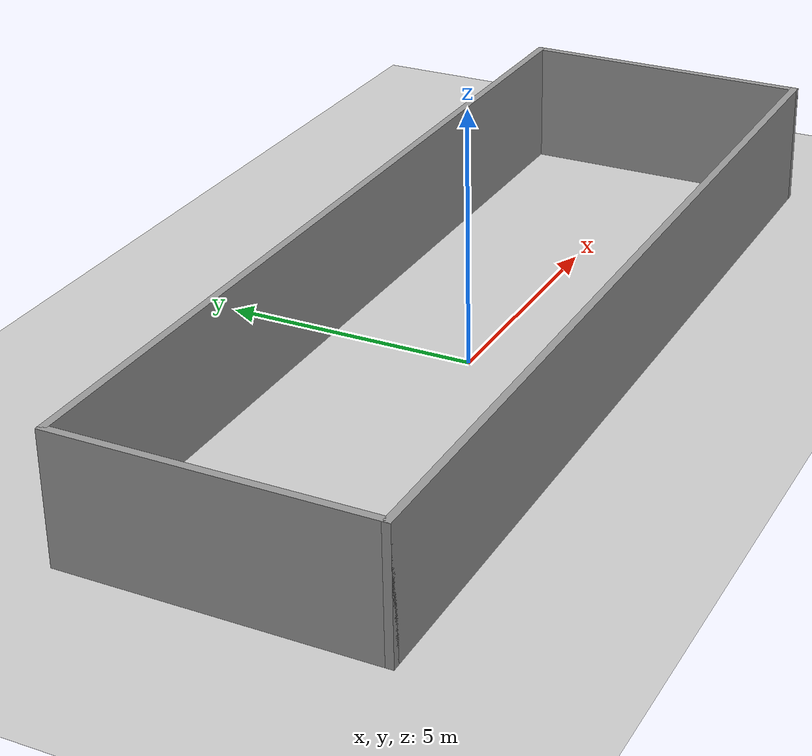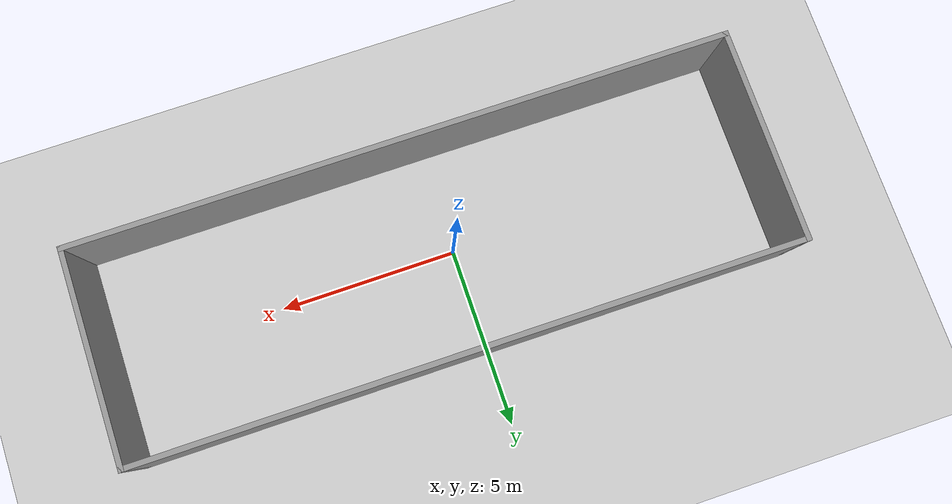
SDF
<sdf version="1.7">
 <world name="default">
  <plugin name="gazebo_ros_state" filename="libgazebo_ros_state.so">
   <ros><namespace>/test</namespace><argument>model_states:=model_states_demo</argument></ros>
   <update_rate>1.0</update_rate>
  </plugin>
  <light name="sun" type="directional">
   <pose>0 0 10 0 -0 0</pose>
   <diffuse>0.8 0.8 0.8 1</diffuse>
   <specular>0.2 0.2 0.2 1</specular>
   <attenuation>
    <range>1000</range>
    <constant>0.9</constant>
    <linear>0.01</linear>
    <quadratic>0.001</quadratic>
   </attenuation>
   <direction>-0.5 0.1 -0.9</direction>
   <spot><inner_angle>0</inner_angle><outer_angle>0</outer_angle><falloff>0</falloff></spot>
  </light>
  <model name="ground_plane">
   <static>1</static>
   <link name="link">
    <collision name="collision">
     <geometry><plane><normal>0 0 1</normal><size>100 100</size></plane></geometry>
     <surface>
      <contact><collide_bitmask>65535</collide_bitmask></contact>
      <friction><ode><mu>100</mu><mu2>50</mu2></ode></friction>
     </surface>
    </collision>
    <visual name="visual">
     <cast_shadows>0</cast_shadows>
     <geometry><plane><normal>0 0 1</normal><size>100 100</size></plane></geometry>
     <material>
      <script><uri>file://media/materials/scripts/gazebo.material</uri><name>Gazebo/Grey</name></script>
     </material>
    </visual>
   </link>
  </model>
  <gravity>0 0 -9.8</gravity>
  <magnetic_field>6e-06 2.3e-05 -4.2e-05</magnetic_field>
  <atmosphere type="adiabatic"/>
  <physics type="ode">
   <max_step_size>0.001</max_step_size>
   <real_time_factor>1</real_time_factor>
   <real_time_update_rate>1000</real_time_update_rate>
  </physics>
  <scene><ambient>0.4 0.4 0.4 1</ambient><background>0.7 0.7 0.7 1</background><shadows>0</shadows></scene>
  <spherical_coordinates>
   <surface_model>EARTH_WGS84</surface_model>
   <latitude_deg>0</latitude_deg>
   <longitude_deg>0</longitude_deg>
   <elevation>0</elevation>
   <heading_deg>0</heading_deg>
  </spherical_coordinates>
  <model name="corridor">
   <pose>0.545 -0.023524 0 0 -0 0</pose>
   <link name="Wall_2">
    <collision name="Wall_2_Collision">
     <geometry><box><size>18.5 0.15 2.5</size></box></geometry>
     <pose>0 0 1.25 0 -0 0</pose>
    </collision>
    <visual name="Wall_2_Visual">
     <pose>0 0 1.25 0 -0 0</pose>
     <geometry><box><size>18.5 0.15 2.5</size></box></geometry>
     <material>
      <script><uri>file://media/materials/scripts/gazebo.material</uri><name>Gazebo/Grey</name></script>
      <ambient>1 1 1 1</ambient>
     </material>
     <meta><layer>0</layer></meta>
    </visual>
    <pose>-0 -2.925 0 0 -0 0</pose>
   </link>
   <link name="Wall_4">
    <collision name="Wall_4_Collision">
     <geometry><box><size>6 0.15 2.5</size></box></geometry>
     <pose>0 0 1.25 0 -0 0</pose>
    </collision>
    <visual name="Wall_4_Visual">
     <pose>0 0 1.25 0 -0 0</pose>
     <geometry><box><size>6 0.15 2.5</size></box></geometry>
     <material>
      <script><uri>file://media/materials/scripts/gazebo.material</uri><name>Gazebo/Grey</name></script>
      <ambient>1 1 1 1</ambient>
     </material>
     <meta><layer>0</layer></meta>
    </visual>
    <pose>-9.175 0 0 0 -0 1.5708</pose>
   </link>
   <link name="Wall_6">
    <collision name="Wall_6_Collision">
     <geometry><box><size>18.5 0.15 2.5</size></box></geometry>
     <pose>0 0 1.25 0 -0 0</pose>
    </collision>
    <visual name="Wall_6_Visual">
     <pose>0 0 1.25 0 -0 0</pose>
     <geometry><box><size>18.5 0.15 2.5</size></box></geometry>
     <material>
      <script><uri>file://media/materials/scripts/gazebo.material</uri><name>Gazebo/Grey</name></script>
      <ambient>1 1 1 1</ambient>
     </material>
     <meta><layer>0</layer></meta>
    </visual>
    <pose>-0 2.925 0 0 -0 0</pose>
   </link>
   <link name="Wall_7">
    <collision name="Wall_7_Collision">
     <geometry><box><size>6 0.15 2.5</size></box></geometry>
     <pose>0 0 1.25 0 -0 0</pose>
    </collision>
    <visual name="Wall_7_Visual">
     <pose>0 0 1.25 0 -0 0</pose>
     <geometry><box><size>6 0.15 2.5</size></box></geometry>
     <material>
      <script><uri>file://media/materials/scripts/gazebo.material</uri><name>Gazebo/Grey</name></script>
      <ambient>1 1 1 1</ambient>
     </material>
     <meta><layer>0</layer></meta>
    </visual>
    <pose>9.175 0 0 0 -0 -1.5708</pose>
   </link>
   <static>1</static>
  </model>
 </world>
</sdf>
